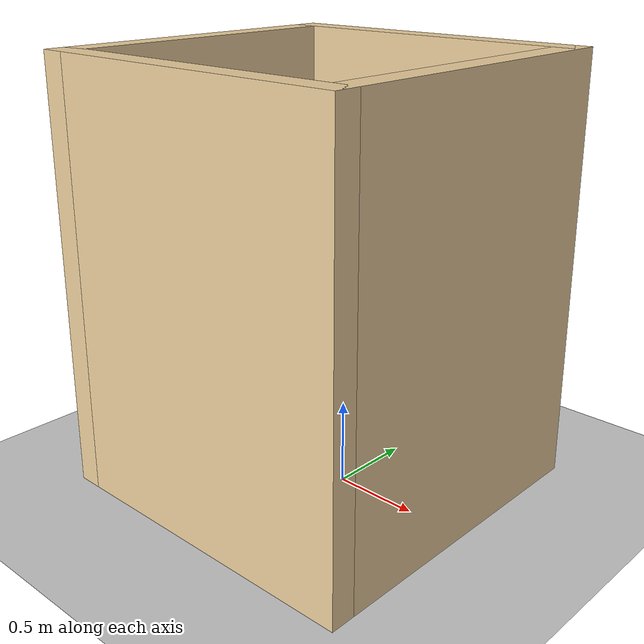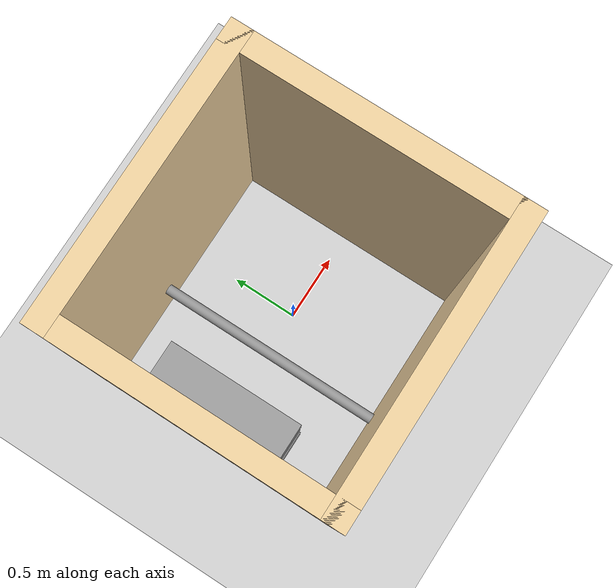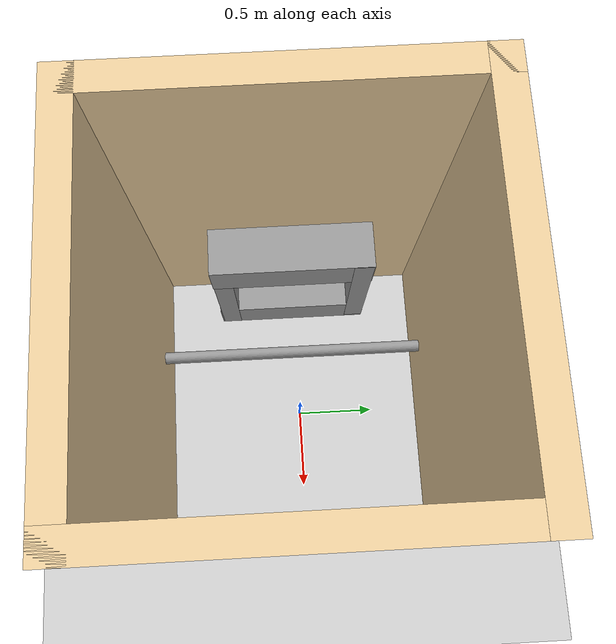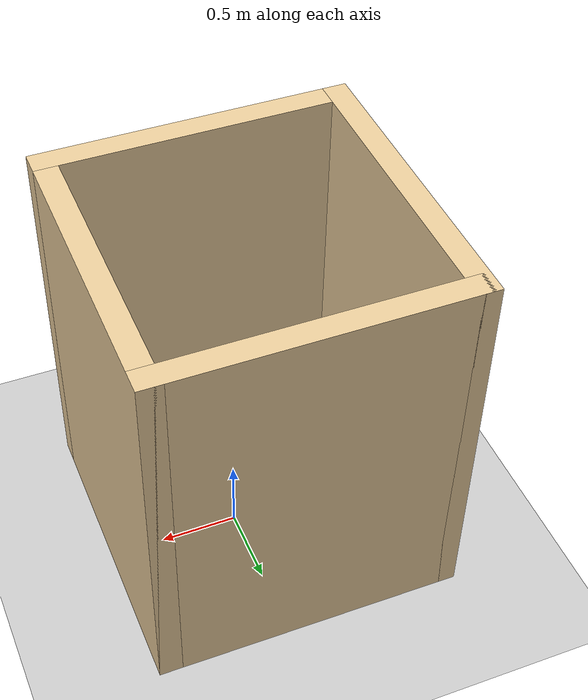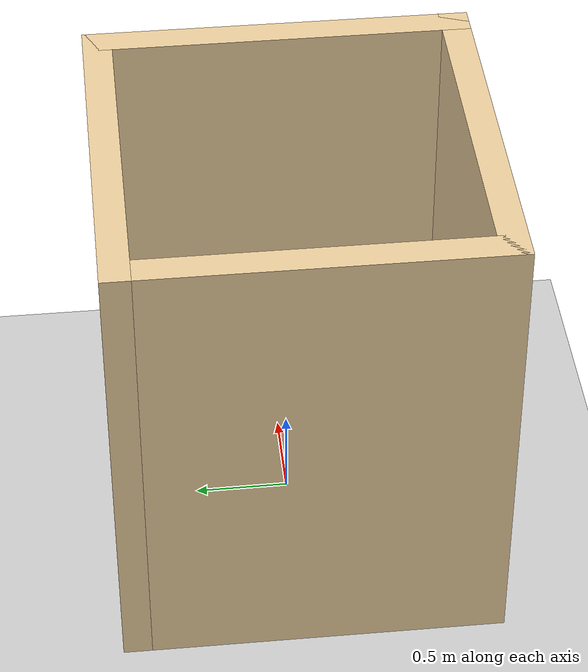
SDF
<sdf version="1.6">
 <world name="default">
  <light name="sun" type="directional">
   <pose>0 0 10 0 -0 0</pose>
   <diffuse>0.8 0.8 0.8 1</diffuse>
   <specular>0.2 0.2 0.2 1</specular>
   <attenuation>
    <range>1000</range>
    <constant>0.9</constant>
    <linear>0.01</linear>
    <quadratic>0.001</quadratic>
   </attenuation>
   <direction>-0.5 0.1 -0.9</direction>
  </light>
  <model name="ground_plane">
   <static>1</static>
   <link name="link">
    <collision name="collision">
     <geometry><plane><normal>0 0 1</normal><size>100 100</size></plane></geometry>
     <surface>
      <contact><collide_bitmask>65535</collide_bitmask></contact>
      <friction><ode><mu>100</mu><mu2>50</mu2></ode></friction>
     </surface>
    </collision>
    <visual name="visual">
     <cast_shadows>0</cast_shadows>
     <geometry><plane><normal>0 0 1</normal><size>100 100</size></plane></geometry>
     <material>
      <script><uri>file://media/materials/scripts/gazebo.material</uri><name>Gazebo/Grey</name></script>
     </material>
    </visual>
   </link>
  </model>
  <gravity>0 0 -9.8</gravity>
  <magnetic_field>6e-06 2.3e-05 -4.2e-05</magnetic_field>
  <atmosphere type="adiabatic"/>
  <physics name="default_physics" default="0" type="ode">
   <max_step_size>0.001</max_step_size>
   <real_time_factor>1</real_time_factor>
   <real_time_update_rate>1000</real_time_update_rate>
  </physics>
  <scene><ambient>0.4 0.4 0.4 1</ambient><background>0.7 0.7 0.7 1</background><shadows>1</shadows></scene>
  <spherical_coordinates>
   <surface_model>EARTH_WGS84</surface_model>
   <latitude_deg>0</latitude_deg>
   <longitude_deg>0</longitude_deg>
   <elevation>0</elevation>
   <heading_deg>0</heading_deg>
  </spherical_coordinates>
  <model name="elerobot_wall">
   <pose>-0.145608 -0.033787 0 0 -0 0</pose>
   <link name="Wall_18">
    <collision name="Wall_18_Collision">
     <geometry><box><size>2 0.15 2.5</size></box></geometry>
     <pose>0 0 1.25 0 -0 0</pose>
    </collision>
    <visual name="Wall_18_Visual">
     <pose>0 0 1.25 0 -0 0</pose>
     <geometry><box><size>2 0.15 2.5</size></box></geometry>
     <material>
      <script><uri>file://media/materials/scripts/gazebo.material</uri><name>Gazebo/Grey</name></script>
      <ambient>0.921569 0.807843 0.615686 1</ambient>
     </material>
     <meta><layer>0</layer></meta>
    </visual>
    <pose>0 0.925 0 0 -0 0</pose>
   </link>
   <link name="Wall_25">
    <collision name="Wall_25_Collision">
     <geometry><box><size>2 0.15 2.5</size></box></geometry>
     <pose>0 0 1.25 0 -0 0</pose>
    </collision>
    <visual name="Wall_25_Visual">
     <pose>0 0 1.25 0 -0 0</pose>
     <geometry><box><size>2 0.15 2.5</size></box></geometry>
     <material>
      <script><uri>file://media/materials/scripts/gazebo.material</uri><name>Gazebo/Grey</name></script>
      <ambient>0.921569 0.807843 0.615686 1</ambient>
     </material>
     <meta><layer>0</layer></meta>
    </visual>
    <pose>0.925 0 0 0 -0 -1.5708</pose>
   </link>
   <link name="Wall_26">
    <collision name="Wall_26_Collision">
     <geometry><box><size>2 0.15 2.5</size></box></geometry>
     <pose>0 0 1.25 0 -0 0</pose>
    </collision>
    <visual name="Wall_26_Visual">
     <pose>0 0 1.25 0 -0 0</pose>
     <geometry><box><size>2 0.15 2.5</size></box></geometry>
     <material>
      <script><uri>file://media/materials/scripts/gazebo.material</uri><name>Gazebo/Grey</name></script>
      <ambient>0.921569 0.807843 0.615686 1</ambient>
     </material>
     <meta><layer>0</layer></meta>
    </visual>
    <pose>0 -0.925 0 0 -0 3.14159</pose>
   </link>
   <link name="Wall_28">
    <collision name="Wall_28_Collision">
     <geometry><box><size>2 0.15 2.5</size></box></geometry>
     <pose>0 0 1.25 0 -0 0</pose>
    </collision>
    <visual name="Wall_28_Visual">
     <pose>0 0 1.25 0 -0 0</pose>
     <geometry><box><size>2 0.15 2.5</size></box></geometry>
     <material>
      <script><uri>file://media/materials/scripts/gazebo.material</uri><name>Gazebo/Grey</name></script>
      <ambient>0.921569 0.807843 0.615686 1</ambient>
     </material>
     <meta><layer>0</layer></meta>
    </visual>
    <pose>-0.925 0 0 0 -0 -1.5708</pose>
   </link>
   <static>1</static>
  </model>
  <model name="elerobot_box_bottom">
   <static>1</static>
   <link name="link">
    <inertial>
     <mass>1</mass>
     <inertia>
      <ixx>0.166667</ixx>
      <ixy>0</ixy>
      <ixz>0</ixz>
      <iyy>0.166667</iyy>
      <iyz>0</iyz>
      <izz>0.166667</izz>
     </inertia>
    </inertial>
    <visual name="visual">
     <geometry><box><size>0.294826 1 0.268198</size></box></geometry>
     <material>
      <script><name>Gazebo/Grey</name><uri>file://media/materials/scripts/gazebo.material</uri></script>
      <shader type="pixel"><normal_map>__default__</normal_map></shader>
     </material>
    </visual>
    <collision name="collision">
     <geometry><box><size>0.294826 1 0.268198</size></box></geometry>
     <surface>
      <friction>
       <ode><mu>1</mu><mu2>1</mu2><fdir1>0 0 0</fdir1><slip1>0</slip1><slip2>0</slip2></ode>
       <torsional>
        <coefficient>1</coefficient>
        <patch_radius>0</patch_radius>
        <surface_radius>0</surface_radius>
        <use_patch_radius>1</use_patch_radius>
        <ode><slip>0</slip></ode>
       </torsional>
      </friction>
      <bounce><restitution_coefficient>0</restitution_coefficient><threshold>1e+06</threshold></bounce>
      <contact>
       <collide_without_contact>0</collide_without_contact>
       <collide_without_contact_bitmask>1</collide_without_contact_bitmask>
       <collide_bitmask>1</collide_bitmask>
       <ode>
        <soft_cfm>0</soft_cfm>
        <soft_erp>0.2</soft_erp>
        <kp>1e+13</kp>
        <kd>1</kd>
        <max_vel>0.01</max_vel>
        <min_depth>0</min_depth>
       </ode>
       <bullet>
        <split_impulse>1</split_impulse>
        <split_impulse_penetration_threshold>-0.01</split_impulse_penetration_threshold>
        <soft_cfm>0</soft_cfm>
        <soft_erp>0.2</soft_erp>
        <kp>1e+13</kp>
        <kd>1</kd>
       </bullet>
      </contact>
     </surface>
    </collision>
   </link>
   <static>0</static>
   <pose>-0.854849 -0.017106 0.134099 0 0 -4e-06</pose>
  </model>
  <model name="elerobot_box_side">
   <static>1</static>
   <link name="link">
    <inertial>
     <mass>1</mass>
     <inertia>
      <ixx>0.166667</ixx>
      <ixy>0</ixy>
      <ixz>0</ixz>
      <iyy>0.166667</iyy>
      <iyz>0</iyz>
      <izz>0.166667</izz>
     </inertia>
    </inertial>
    <visual name="visual">
     <geometry><box><size>0.259751 0.12231 1</size></box></geometry>
     <material>
      <script><name>Gazebo/Grey</name><uri>file://media/materials/scripts/gazebo.material</uri></script>
      <shader type="pixel"/>
     </material>
    </visual>
    <collision name="collision">
     <geometry><box><size>0.259751 0.12231 1</size></box></geometry>
     <surface>
      <friction>
       <ode><mu>1</mu><mu2>1</mu2><fdir1>0 0 0</fdir1><slip1>0</slip1><slip2>0</slip2></ode>
       <torsional>
        <coefficient>1</coefficient>
        <patch_radius>0</patch_radius>
        <surface_radius>0</surface_radius>
        <use_patch_radius>1</use_patch_radius>
        <ode><slip>0</slip></ode>
       </torsional>
      </friction>
      <bounce><restitution_coefficient>0</restitution_coefficient><threshold>1e+06</threshold></bounce>
      <contact>
       <collide_without_contact>0</collide_without_contact>
       <collide_without_contact_bitmask>1</collide_without_contact_bitmask>
       <collide_bitmask>1</collide_bitmask>
       <ode>
        <soft_cfm>0</soft_cfm>
        <soft_erp>0.2</soft_erp>
        <kp>1e+13</kp>
        <kd>1</kd>
        <max_vel>0.01</max_vel>
        <min_depth>0</min_depth>
       </ode>
       <bullet>
        <split_impulse>1</split_impulse>
        <split_impulse_penetration_threshold>-0.01</split_impulse_penetration_threshold>
        <soft_cfm>0</soft_cfm>
        <soft_erp>0.2</soft_erp>
        <kp>1e+13</kp>
        <kd>1</kd>
       </bullet>
      </contact>
     </surface>
    </collision>
   </link>
   <static>0</static>
   <pose>-0.837281 -0.448229 0.5 0 -0 0</pose>
  </model>
  <model name="elerobot_box_side_0">
   <static>1</static>
   <link name="link">
    <inertial>
     <mass>1</mass>
     <inertia>
      <ixx>0.166667</ixx>
      <ixy>0</ixy>
      <ixz>0</ixz>
      <iyy>0.166667</iyy>
      <iyz>0</iyz>
      <izz>0.166667</izz>
     </inertia>
    </inertial>
    <visual name="visual">
     <geometry><box><size>0.259751 0.12231 1</size></box></geometry>
     <material>
      <script><name>Gazebo/Grey</name><uri>file://media/materials/scripts/gazebo.material</uri></script>
      <shader type="pixel"/>
     </material>
    </visual>
    <collision name="collision">
     <geometry><box><size>0.259751 0.12231 1</size></box></geometry>
     <surface>
      <friction>
       <ode><mu>1</mu><mu2>1</mu2><fdir1>0 0 0</fdir1><slip1>0</slip1><slip2>0</slip2></ode>
       <torsional>
        <coefficient>1</coefficient>
        <patch_radius>0</patch_radius>
        <surface_radius>0</surface_radius>
        <use_patch_radius>1</use_patch_radius>
        <ode><slip>0</slip></ode>
       </torsional>
      </friction>
      <bounce><restitution_coefficient>0</restitution_coefficient><threshold>1e+06</threshold></bounce>
      <contact>
       <collide_without_contact>0</collide_without_contact>
       <collide_without_contact_bitmask>1</collide_without_contact_bitmask>
       <collide_bitmask>1</collide_bitmask>
       <ode>
        <soft_cfm>0</soft_cfm>
        <soft_erp>0.2</soft_erp>
        <kp>1e+13</kp>
        <kd>1</kd>
        <max_vel>0.01</max_vel>
        <min_depth>0</min_depth>
       </ode>
       <bullet>
        <split_impulse>1</split_impulse>
        <split_impulse_penetration_threshold>-0.01</split_impulse_penetration_threshold>
        <soft_cfm>0</soft_cfm>
        <soft_erp>0.2</soft_erp>
        <kp>1e+13</kp>
        <kd>1</kd>
       </bullet>
      </contact>
     </surface>
    </collision>
   </link>
   <static>0</static>
   <pose>-0.835817 0.420861 0.523237 0 -0 0</pose>
  </model>
  <model name="elerobot_box_bottom_0">
   <static>1</static>
   <link name="link">
    <inertial>
     <mass>1</mass>
     <inertia>
      <ixx>0.166667</ixx>
      <ixy>0</ixy>
      <ixz>0</ixz>
      <iyy>0.166667</iyy>
      <iyz>0</iyz>
      <izz>0.166667</izz>
     </inertia>
    </inertial>
    <visual name="visual">
     <geometry><box><size>0.294826 1 0.268198</size></box></geometry>
     <material>
      <script><name>Gazebo/Grey</name><uri>file://media/materials/scripts/gazebo.material</uri></script>
      <shader type="pixel"><normal_map>__default__</normal_map></shader>
     </material>
    </visual>
    <collision name="collision">
     <geometry><box><size>0.294826 1 0.268198</size></box></geometry>
     <surface>
      <friction>
       <ode><mu>1</mu><mu2>1</mu2><fdir1>0 0 0</fdir1><slip1>0</slip1><slip2>0</slip2></ode>
       <torsional>
        <coefficient>1</coefficient>
        <patch_radius>0</patch_radius>
        <surface_radius>0</surface_radius>
        <use_patch_radius>1</use_patch_radius>
        <ode><slip>0</slip></ode>
       </torsional>
      </friction>
      <bounce><restitution_coefficient>0</restitution_coefficient><threshold>1e+06</threshold></bounce>
      <contact>
       <collide_without_contact>0</collide_without_contact>
       <collide_without_contact_bitmask>1</collide_without_contact_bitmask>
       <collide_bitmask>1</collide_bitmask>
       <ode>
        <soft_cfm>0</soft_cfm>
        <soft_erp>0.2</soft_erp>
        <kp>1e+13</kp>
        <kd>1</kd>
        <max_vel>0.01</max_vel>
        <min_depth>0</min_depth>
       </ode>
       <bullet>
        <split_impulse>1</split_impulse>
        <split_impulse_penetration_threshold>-0.01</split_impulse_penetration_threshold>
        <soft_cfm>0</soft_cfm>
        <soft_erp>0.2</soft_erp>
        <kp>1e+13</kp>
        <kd>1</kd>
       </bullet>
      </contact>
     </surface>
    </collision>
   </link>
   <static>0</static>
   <pose>-0.854077 -0.013637 0.894607 0 -0 0</pose>
  </model>
  <model name="unit_cylinder">
   <link name="link">
    <inertial>
     <mass>1.54969</mass>
     <inertia>
      <ixx>0.474339</ixx>
      <ixy>0</ixy>
      <ixz>0</ixz>
      <iyy>0.474339</iyy>
      <iyz>0</iyz>
      <izz>0.00111956</izz>
     </inertia>
    </inertial>
    <visual name="visual">
     <geometry><cylinder><radius>0.0380117</radius><length>1.91539</length></cylinder></geometry>
     <material>
      <script><name>Gazebo/Grey</name><uri>file://media/materials/scripts/gazebo.material</uri></script>
      <shader type="pixel"><normal_map>__default__</normal_map></shader>
      <ambient>0.3 0.3 0.3 1</ambient>
      <diffuse>0.7 0.7 0.7 1</diffuse>
      <specular>0.01 0.01 0.01 1</specular>
      <emissive>0 0 0 1</emissive>
     </material>
    </visual>
    <collision name="collision">
     <geometry><cylinder><radius>0.038012</radius><length>1.91539</length></cylinder></geometry>
     <surface>
      <friction>
       <ode><mu>1</mu><mu2>1</mu2><fdir1>0 0 0</fdir1><slip1>0</slip1><slip2>0</slip2></ode>
       <torsional>
        <coefficient>1</coefficient>
        <patch_radius>0</patch_radius>
        <surface_radius>0</surface_radius>
        <use_patch_radius>1</use_patch_radius>
        <ode><slip>0</slip></ode>
       </torsional>
      </friction>
      <bounce><restitution_coefficient>0</restitution_coefficient><threshold>1e+06</threshold></bounce>
      <contact>
       <collide_without_contact>0</collide_without_contact>
       <collide_without_contact_bitmask>1</collide_without_contact_bitmask>
       <collide_bitmask>1</collide_bitmask>
       <ode>
        <soft_cfm>0</soft_cfm>
        <soft_erp>0.2</soft_erp>
        <kp>1e+13</kp>
        <kd>1</kd>
        <max_vel>0.01</max_vel>
        <min_depth>0</min_depth>
       </ode>
       <bullet>
        <split_impulse>1</split_impulse>
        <split_impulse_penetration_threshold>-0.01</split_impulse_penetration_threshold>
        <soft_cfm>0</soft_cfm>
        <soft_erp>0.2</soft_erp>
        <kp>1e+13</kp>
        <kd>1</kd>
       </bullet>
      </contact>
     </surface>
    </collision>
   </link>
   <static>1</static>
   <pose>-0.367014 -0.045728 0.360195 -1.57385 0 0</pose>
  </model>
 </world>
</sdf>
